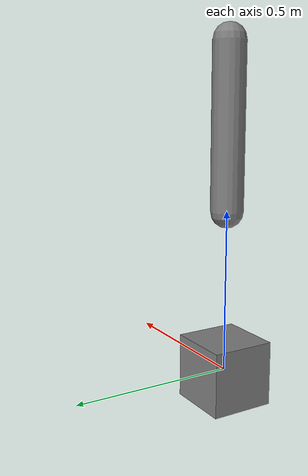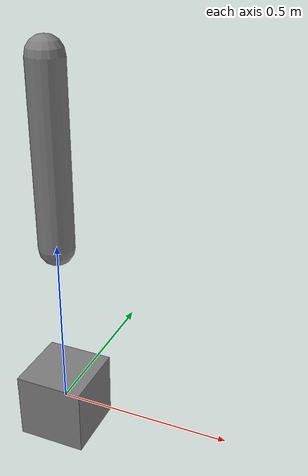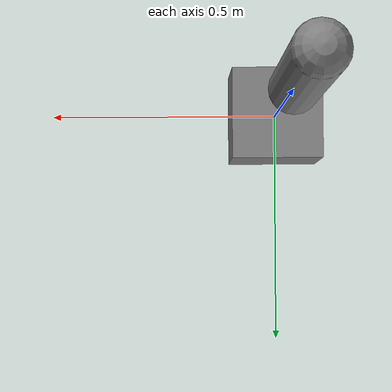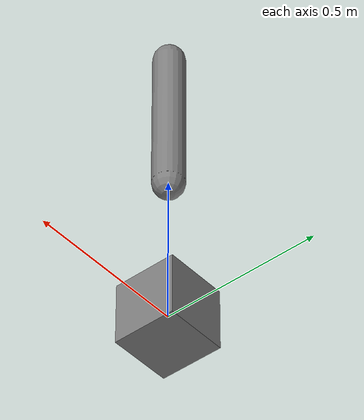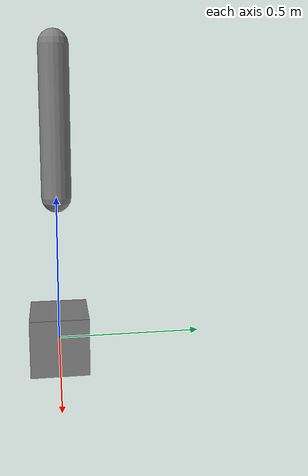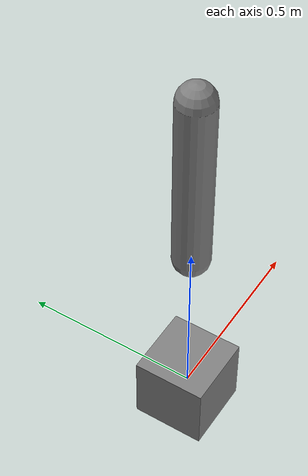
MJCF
<mujoco model="minimal_arm">
  <worldbody>
    <body name="base" pos="0 0 0">
      <inertial pos="0 0 0" mass="1.0" diaginertia="0.1 0.1 0.1"/>
      <geom type="box" size="0.1 0.1 0.1"/>
      <body name="link1" pos="0 0 0.5">
        <inertial pos="0 0 0.25" mass="0.5" diaginertia="0.05 0.05 0.01"/>
        <joint name="joint0" type="hinge" axis="0 0 1"/>
        <geom type="capsule" size="0.05" fromto="0 0 0 0 0 0.5"/>
      </body>
    </body>
  </worldbody>
</mujoco>
